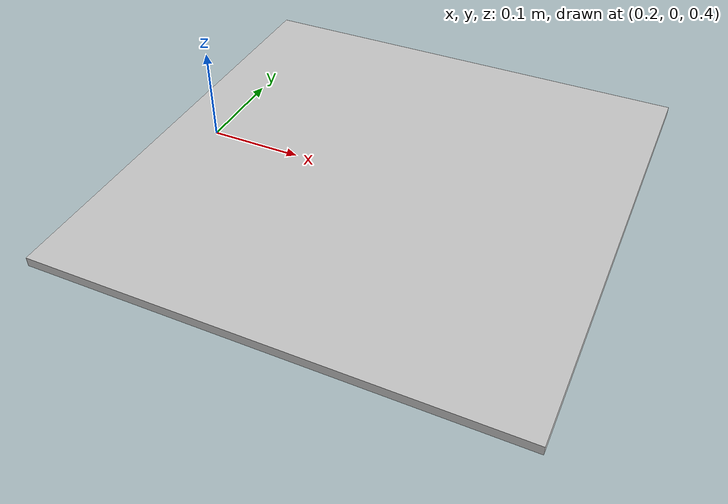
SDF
<?xml version="1.0" ?>
<sdf version="1.6">
  <model name="soft_block">
    <!--
      静态属性：false表示软块可以运动/形变
      对于硅胶材质，需要允许适当的形变和位移
    -->
    <static>false</static>
    <!--
      模型位姿：相对于世界坐标系，格式: x y z roll pitch yaw
      此处设置的是模型默认位置，实际位置会在世界文件中被覆盖
    -->
    <pose>0.4 0 0.4005 0 0 0</pose>
    <link name="link">
      <inertial>
        <!-- 质量：0.5kg，适中的质量使其能模拟轻柔材料 -->
        <mass>0.5</mass>
        <inertia>
          <ixx>0.0104167</ixx>  <!-- x轴转动惯性 -->
          <ixy>0</ixy>           <!-- xy平面耦合惯性 -->
          <ixz>0</ixz>           <!-- xz平面耦合惯性 -->
          <iyy>0.0104167</iyy>   <!-- y轴转动惯性 -->
          <iyz>0</iyz>           <!-- yz平面耦合惯性 -->
          <izz>0.0208333</izz>   <!-- z轴转动惯性 -->
        </inertia>
      </inertial>
      <collision name="collision">
        <!-- 碰撞几何体：薄板形状 -->
        <geometry>
          <box>
            <!--
              尺寸：[长 宽 高]
              0.5 x 0.5 x 0.01米，将厚度改为1cm
              高度0.01米用于模拟薄的软表面
            -->
            <size>0.5 0.5 0.01</size>
          </box>
        </geometry>
        <surface>
          <!-- 物理参数 - 使用simulation_parameters_config.yaml中定义的值 -->
          <friction>
            <ode>
              <mu>0.0</mu>
              <mu2>0.0</mu2>
              <fdir1>0 0 1</fdir1>
              <slip1>0.0</slip1>
              <slip2>0.0</slip2>
            </ode>
          </friction>
          <contact>
            <ode>
              <min_depth>0.001</min_depth>        <!-- 增加最小深度，允许更深的穿透 -->
              <max_vel>0.1</max_vel>              <!-- 增大最大接触速度 -->
              <kp>100</kp>                        <!-- 大幅降低刚度系数，模拟极软材料 -->
              <kd>10</kd>                         <!-- 降低阻尼系数 -->
              <elastic_modulus>300000.0</elastic_modulus>
              <poisson_ratio>0.45</poisson_ratio>
              <soft_cfm>0.1</soft_cfm>            <!-- 大幅增加软约束混合参数 -->
              <soft_erp>0.2</soft_erp>            <!-- 设置软错误修正参数 -->
            </ode>
          </contact>
        </surface>
      </collision>
      <visual name="visual">
        <!-- 视觉几何体：与碰撞几何体相同的薄板 -->
        <geometry>
          <box>
            <size>0.5 0.5 0.01</size>
          </box>
        </geometry>
        <!--
          材质属性：浅灰色外观
          使用RGB颜色值(0.8, 0.8, 0.8)表示浅灰色
        -->
        <material>
          <!-- 环境光反射率 -->
          <ambient>0.8 0.8 0.8 1</ambient>
          <!-- 漫反射率 -->
          <diffuse>0.8 0.8 0.8 1</diffuse>
          <!-- 镜面反射率 -->
          <specular>0.1 0.1 0.1 1</specular>
        </material>
      </visual>
    </link>
    <!--
      Gazebo特有属性：提供额外的物理和渲染参数
      这些参数可能会覆盖上面定义的一些值
    -->
    <gazebo>
      <!-- Gazebo标准材质：白色 -->
      <material>Gazebo/White</material>
      <!-- 摩擦系数设置为0，消除XY平面的摩擦力 -->
      <mu1>0.0</mu1>
      <mu2>0.0</mu2>
      <!--
        接触刚度系数：降低到100模拟极软硅胶特性
        这是关键参数，决定软块的可压缩性
      -->
      <kp>20000</kp>
      <!-- 阻尼系数：降低到10，与ODE设置保持一致 -->
      <kd>10</kd>
      <!-- 最小接触深度：增加到0.001，允许更深的压缩 -->
      <minDepth>0.001</minDepth>
      <!-- 最大接触速度：增加到0.1，允许更快的形变 -->
      <maxVel>0.1</maxVel>
      <!-- 自碰撞：禁用模型内部的碰撞检测 -->
      <selfCollide>0</selfCollide>
      <!-- 激光回波强度：对激光传感器的反射强度 -->
      <laserRetro>0</laserRetro>
      <!-- 添加弹性模量参数，与软接触模型参数精确匹配 -->
      <elastic_modulus>300000.0</elastic_modulus>
      <!-- 泊松比：根据论文中的材料特性 -->
      <poisson_ratio>0.45</poisson_ratio>
      <!-- 大幅增加软约束混合参数，使接触极其柔和 -->
      <soft_cfm>0.1</soft_cfm>
      <!-- 设置软错误修正参数，降低收敛要求 -->
      <soft_erp>0.2</soft_erp>
    </gazebo>
  </model>
</sdf>
